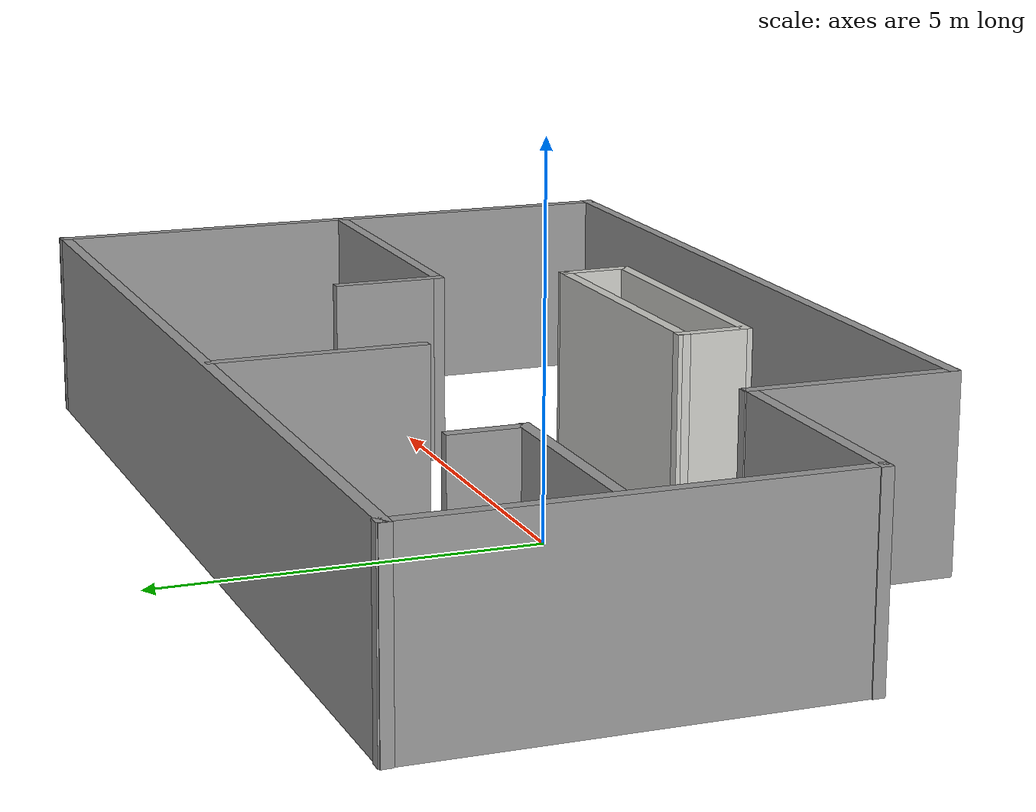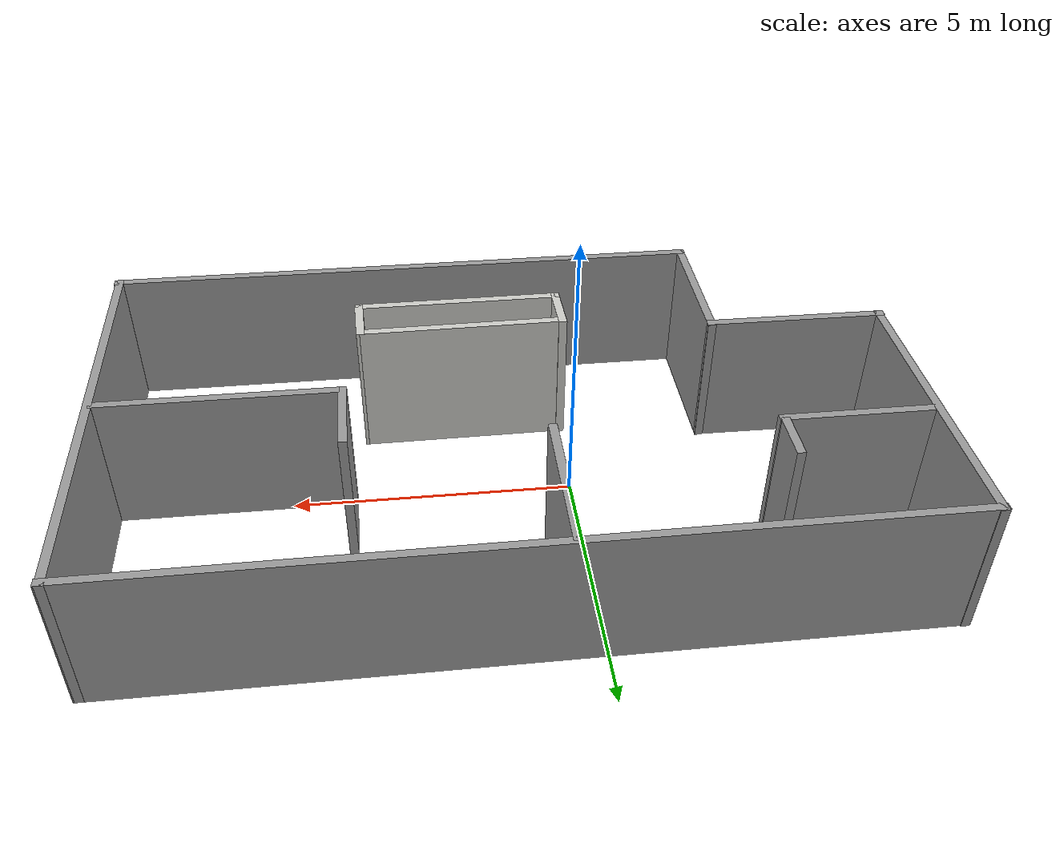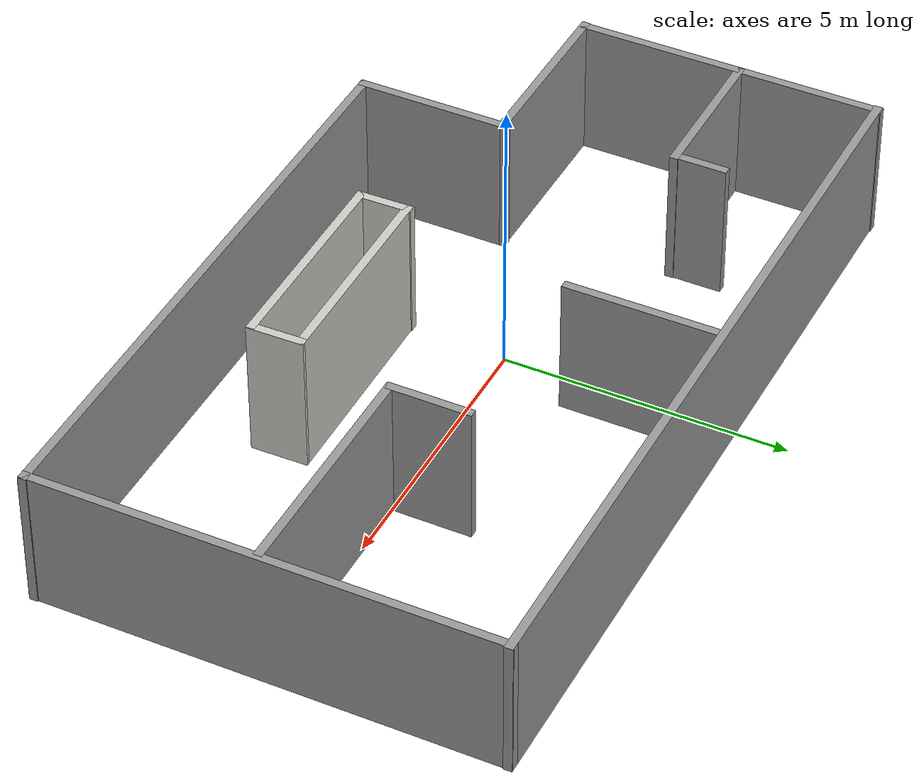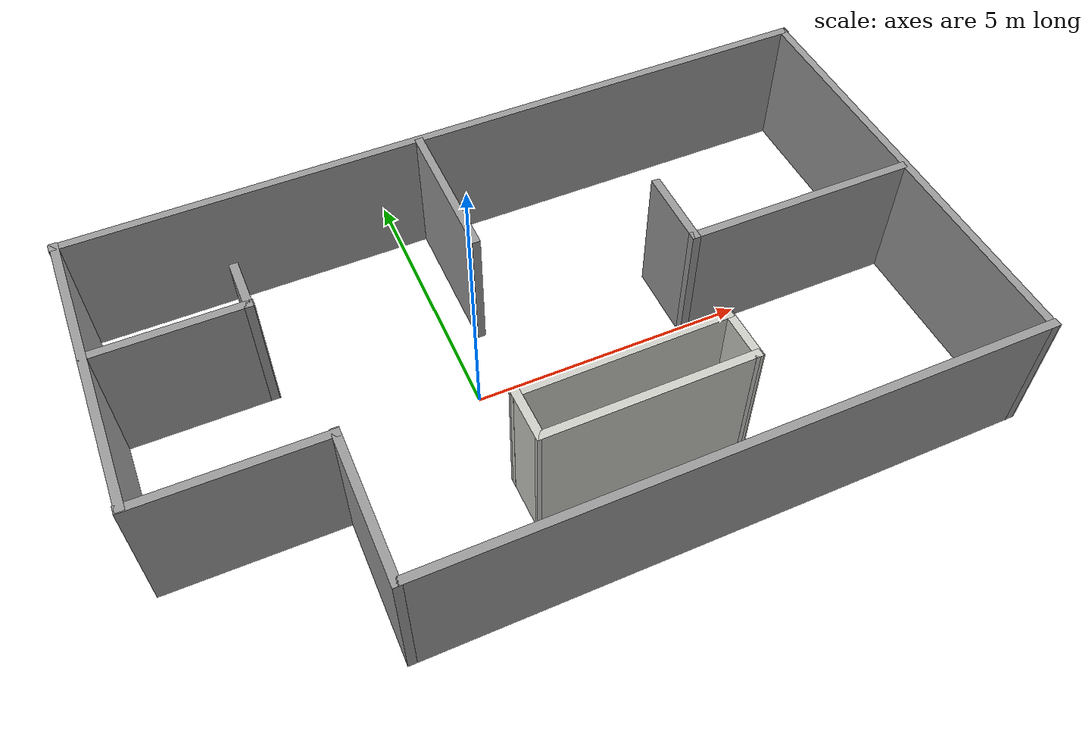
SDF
<?xml version='1.0'?>
<sdf version='1.7'>
  <model name='my_map.world'>
    <pose>1.15263 0.05105 0 0 -0 0</pose>
    <link name='Wall_16'>
      <collision name='Wall_16_Collision'>
        <geometry>
          <box>
            <size>4.25 0.15 2.5</size>
          </box>
        </geometry>
        <pose>0 0 1.25 0 -0 0</pose>
      </collision>
      <visual name='Wall_16_Visual'>
        <pose>0 0 1.25 0 -0 0</pose>
        <geometry>
          <box>
            <size>4.25 0.15 2.5</size>
          </box>
        </geometry>
        <material>
          <script>
            <uri>file://media/materials/scripts/gazebo.material</uri>
            <name>Gazebo/Grey</name>
          </script>
          <ambient>1 1 1 1</ambient>
        </material>
        <meta>
          <layer>0</layer>
        </meta>
      </visual>
      <pose>4.83516 -0.087704 0 0 -0 3.14159</pose>
    </link>
    <link name='Wall_18'>
      <collision name='Wall_18_Collision'>
        <geometry>
          <box>
            <size>5.5 0.15 2.5</size>
          </box>
        </geometry>
        <pose>0 0 1.25 0 -0 0</pose>
      </collision>
      <visual name='Wall_18_Visual'>
        <pose>0 0 1.25 0 -0 0</pose>
        <geometry>
          <box>
            <size>5.5 0.15 2.5</size>
          </box>
        </geometry>
        <material>
          <script>
            <uri>file://media/materials/scripts/gazebo.material</uri>
            <name>Gazebo/Grey</name>
          </script>
          <ambient>1 1 1 1</ambient>
        </material>
        <meta>
          <layer>0</layer>
        </meta>
      </visual>
      <pose>-6.98111 1.28232 0 0 -0 -1.5708</pose>
    </link>
    <link name='Wall_19'>
      <collision name='Wall_19_Collision'>
        <geometry>
          <box>
            <size>3.29031 0.15 2.5</size>
          </box>
        </geometry>
        <pose>0 0 1.25 0 -0 0</pose>
      </collision>
      <visual name='Wall_19_Visual'>
        <pose>0 0 1.25 0 -0 0</pose>
        <geometry>
          <box>
            <size>3.29031 0.15 2.5</size>
          </box>
        </geometry>
        <material>
          <script>
            <uri>file://media/materials/scripts/gazebo.material</uri>
            <name>Gazebo/Grey</name>
          </script>
          <ambient>1 1 1 1</ambient>
        </material>
        <meta>
          <layer>0</layer>
        </meta>
      </visual>
      <pose>-5.42854 -1.41891 0 0 -0 -0.00557</pose>
    </link>
    <link name='Wall_2'>
      <collision name='Wall_2_Collision'>
        <geometry>
          <box>
            <size>14.1277 0.15 2.5</size>
          </box>
        </geometry>
        <pose>0 0 1.25 0 -0 0</pose>
      </collision>
      <visual name='Wall_2_Visual'>
        <pose>0 0 1.25 0 -0 0</pose>
        <geometry>
          <box>
            <size>14.1277 0.15 2.5</size>
          </box>
        </geometry>
        <material>
          <script>
            <uri>file://media/materials/scripts/gazebo.material</uri>
            <name>Gazebo/Grey</name>
          </script>
          <ambient>1 1 1 1</ambient>
        </material>
        <meta>
          <layer>0</layer>
        </meta>
      </visual>
      <pose>-0.009812 3.97481 0 0 -0 0.005005</pose>
    </link>
    <link name='Wall_20'>
      <collision name='Wall_20_Collision'>
        <geometry>
          <box>
            <size>2.75 0.15 2.5</size>
          </box>
        </geometry>
        <pose>0 0 1.25 0 -0 0</pose>
      </collision>
      <visual name='Wall_20_Visual'>
        <pose>0 0 1.25 0 -0 0</pose>
        <geometry>
          <box>
            <size>2.75 0.15 2.5</size>
          </box>
        </geometry>
        <material>
          <script>
            <uri>file://media/materials/scripts/gazebo.material</uri>
            <name>Gazebo/Grey</name>
          </script>
          <ambient>1 1 1 1</ambient>
        </material>
        <meta>
          <layer>0</layer>
        </meta>
      </visual>
      <pose>-3.85848 -2.71017 0 0 -0 -1.5708</pose>
    </link>
    <link name='Wall_22'>
      <collision name='Wall_22_Collision'>
        <geometry>
          <box>
            <size>1.5 0.15 2.5</size>
          </box>
        </geometry>
        <pose>0 0 1.25 0 -0 0</pose>
      </collision>
      <visual name='Wall_22_Visual'>
        <pose>0 0 1.25 0 -0 0</pose>
        <geometry>
          <box>
            <size>1.5 0.15 2.5</size>
          </box>
        </geometry>
        <material>
          <script>
            <uri>file://media/materials/scripts/gazebo.material</uri>
            <name>Gazebo/Grey</name>
          </script>
          <ambient>1 1 1 1</ambient>
        </material>
        <meta>
          <layer>0</layer>
        </meta>
      </visual>
      <pose>2.78516 0.587296 0 0 -0 1.5708</pose>
    </link>
    <link name='Wall_24'>
      <collision name='Wall_24_Collision'>
        <geometry>
          <box>
            <size>2.75 0.15 2.5</size>
          </box>
        </geometry>
        <pose>0 0 1.25 0 -0 0</pose>
      </collision>
      <visual name='Wall_24_Visual'>
        <pose>0 0 1.25 0 -0 0</pose>
        <geometry>
          <box>
            <size>2.75 0.15 2.5</size>
          </box>
        </geometry>
        <material>
          <script>
            <uri>file://media/materials/scripts/gazebo.material</uri>
            <name>Gazebo/Grey</name>
          </script>
          <ambient>1 1 1 1</ambient>
        </material>
        <meta>
          <layer>0</layer>
        </meta>
      </visual>
      <pose>-5.66133 1.46438 0 0 -0 0</pose>
    </link>
    <link name='Wall_25'>
      <collision name='Wall_25_Collision'>
        <geometry>
          <box>
            <size>1 0.15 2.5</size>
          </box>
        </geometry>
        <pose>0 0 1.25 0 -0 0</pose>
      </collision>
      <visual name='Wall_25_Visual'>
        <pose>0 0 1.25 0 -0 0</pose>
        <geometry>
          <box>
            <size>1 0.15 2.5</size>
          </box>
        </geometry>
        <material>
          <script>
            <uri>file://media/materials/scripts/gazebo.material</uri>
            <name>Gazebo/Grey</name>
          </script>
          <ambient>1 1 1 1</ambient>
        </material>
        <meta>
          <layer>0</layer>
        </meta>
      </visual>
      <pose>-4.37882 1.88938 0 0 -0 1.5708</pose>
    </link>
    <link name='Wall_27'>
      <collision name='Wall_27_Collision'>
        <geometry>
          <box>
            <size>1.00532 0.15 2.5</size>
          </box>
        </geometry>
        <pose>0 0 1.25 0 -0 0</pose>
      </collision>
      <visual name='Wall_27_Visual'>
        <pose>0 0 1.25 0 -0 0</pose>
        <geometry>
          <box>
            <size>1.00532 0.15 2.5</size>
          </box>
        </geometry>
        <material>
          <script>
            <uri>file://media/materials/scripts/gazebo.material</uri>
            <name>Gazebo/CeilingTiled</name>
          </script>
          <ambient>1 1 1 1</ambient>
        </material>
        <meta>
          <layer>0</layer>
        </meta>
      </visual>
      <pose>-1.18611 -2.23995 0 0 -0 -1.55035</pose>
    </link>
    <link name='Wall_28'>
      <collision name='Wall_28_Collision'>
        <geometry>
          <box>
            <size>3.78917 0.15 2.5</size>
          </box>
        </geometry>
        <pose>0 0 1.25 0 -0 0</pose>
      </collision>
      <visual name='Wall_28_Visual'>
        <pose>0 0 1.25 0 -0 0</pose>
        <geometry>
          <box>
            <size>3.78917 0.15 2.5</size>
          </box>
        </geometry>
        <material>
          <script>
            <uri>file://media/materials/scripts/gazebo.material</uri>
            <name>Gazebo/CeilingTiled</name>
          </script>
          <ambient>1 1 1 1</ambient>
        </material>
        <meta>
          <layer>0</layer>
        </meta>
      </visual>
      <pose>0.642194 -2.65878 0 0 -0 0.004806</pose>
    </link>
    <link name='Wall_29'>
      <collision name='Wall_29_Collision'>
        <geometry>
          <box>
            <size>1.00532 0.15 2.5</size>
          </box>
        </geometry>
        <pose>0 0 1.25 0 -0 0</pose>
      </collision>
      <visual name='Wall_29_Visual'>
        <pose>0 0 1.25 0 -0 0</pose>
        <geometry>
          <box>
            <size>1.00532 0.15 2.5</size>
          </box>
        </geometry>
        <material>
          <script>
            <uri>file://media/materials/scripts/gazebo.material</uri>
            <name>Gazebo/CeilingTiled</name>
          </script>
          <ambient>1 1 1 1</ambient>
        </material>
        <meta>
          <layer>0</layer>
        </meta>
      </visual>
      <pose>2.4705 -2.22246 0 0 -0 1.59125</pose>
    </link>
    <link name='Wall_3'>
      <collision name='Wall_3_Collision'>
        <geometry>
          <box>
            <size>8.16995 0.15 2.5</size>
          </box>
        </geometry>
        <pose>0 0 1.25 0 -0 0</pose>
      </collision>
      <visual name='Wall_3_Visual'>
        <pose>0 0 1.25 0 -0 0</pose>
        <geometry>
          <box>
            <size>8.16995 0.15 2.5</size>
          </box>
        </geometry>
        <material>
          <script>
            <uri>file://media/materials/scripts/gazebo.material</uri>
            <name>Gazebo/Grey</name>
          </script>
          <ambient>1 1 1 1</ambient>
        </material>
        <meta>
          <layer>0</layer>
        </meta>
      </visual>
      <pose>6.96892 1.9e-05 0 0 -0 -1.56829</pose>
    </link>
    <link name='Wall_30'>
      <collision name='Wall_30_Collision'>
        <geometry>
          <box>
            <size>3.78929 0.15 2.5</size>
          </box>
        </geometry>
        <pose>0 0 1.25 0 -0 0</pose>
      </collision>
      <visual name='Wall_30_Visual'>
        <pose>0 0 1.25 0 -0 0</pose>
        <geometry>
          <box>
            <size>3.78929 0.15 2.5</size>
          </box>
        </geometry>
        <material>
          <script>
            <uri>file://media/materials/scripts/gazebo.material</uri>
            <name>Gazebo/CeilingTiled</name>
          </script>
          <ambient>1 1 1 1</ambient>
        </material>
        <meta>
          <layer>0</layer>
        </meta>
      </visual>
      <pose>0.624704 -1.81238 0 0 -0 -3.13198</pose>
    </link>
    <link name='Wall_34'>
      <collision name='Wall_34_Collision'>
        <geometry>
          <box>
            <size>2.75 0.15 2.5</size>
          </box>
        </geometry>
        <pose>0 0 1.25 0 -0 0</pose>
      </collision>
      <visual name='Wall_34_Visual'>
        <pose>0 0 1.25 0 -0 0</pose>
        <geometry>
          <box>
            <size>2.75 0.15 2.5</size>
          </box>
        </geometry>
        <material>
          <script>
            <uri>file://media/materials/scripts/gazebo.material</uri>
            <name>Gazebo/Grey</name>
          </script>
          <ambient>1 1 1 1</ambient>
        </material>
        <meta>
          <layer>0</layer>
        </meta>
      </visual>
      <pose>-0.594075 2.60337 0 0 -0 -1.5708</pose>
    </link>
    <link name='Wall_4'>
      <collision name='Wall_4_Collision'>
        <geometry>
          <box>
            <size>11 0.15 2.5</size>
          </box>
        </geometry>
        <pose>0 0 1.25 0 -0 0</pose>
      </collision>
      <visual name='Wall_4_Visual'>
        <pose>0 0 1.25 0 -0 0</pose>
        <geometry>
          <box>
            <size>11 0.15 2.5</size>
          </box>
        </geometry>
        <material>
          <script>
            <uri>file://media/materials/scripts/gazebo.material</uri>
            <name>Gazebo/Grey</name>
          </script>
          <ambient>1 1 1 1</ambient>
        </material>
        <meta>
          <layer>0</layer>
        </meta>
      </visual>
      <pose>1.57409 -4.00975 0 0 -0 3.14159</pose>
    </link>
    <static>1</static>
  </model>
</sdf>
